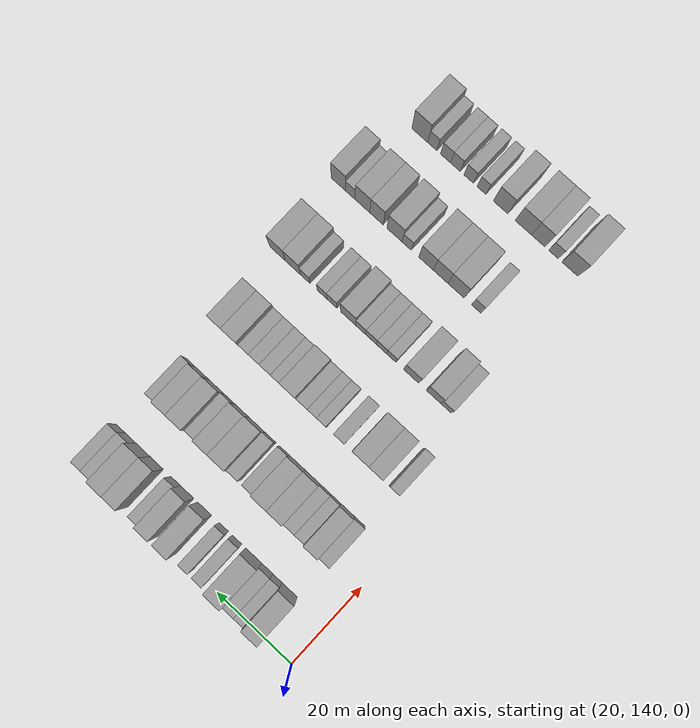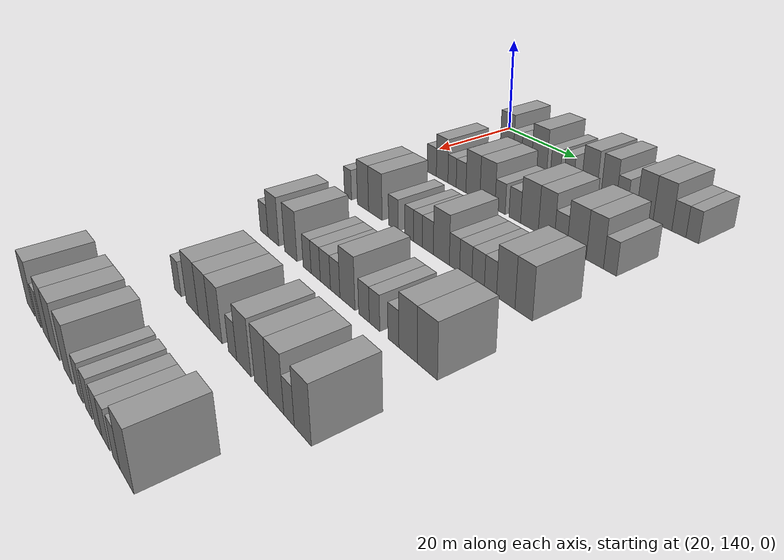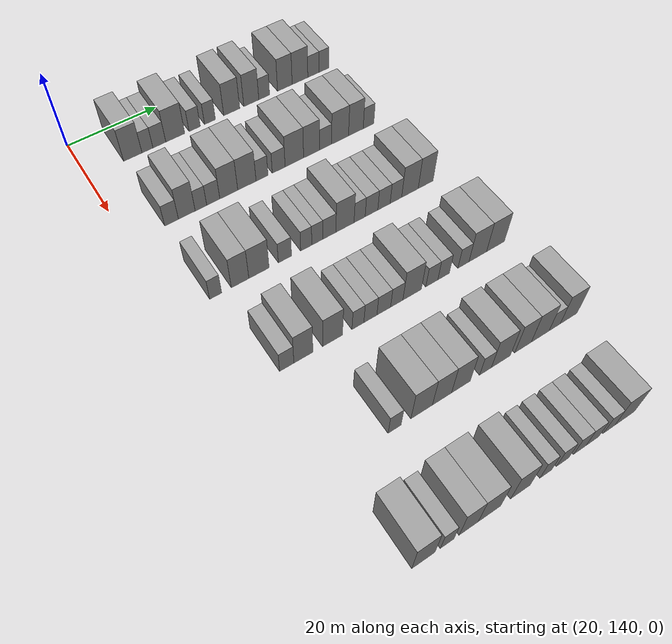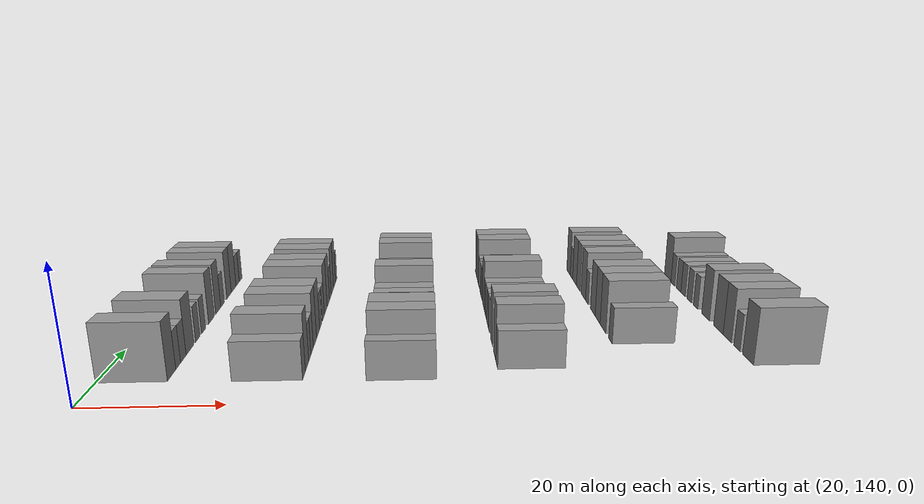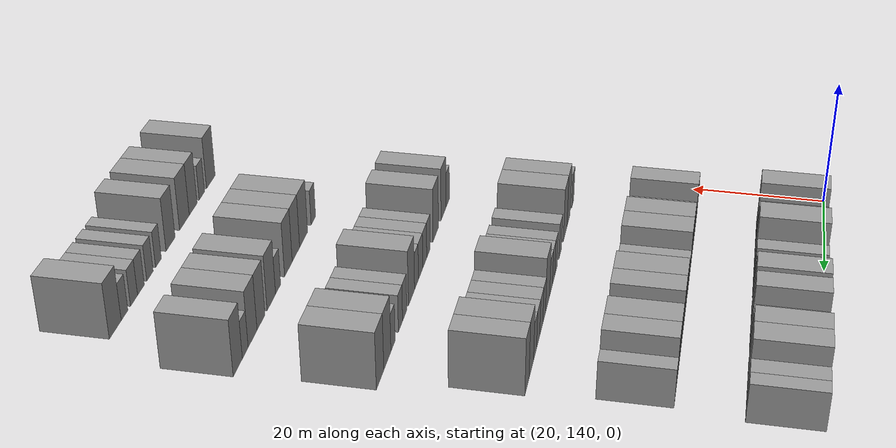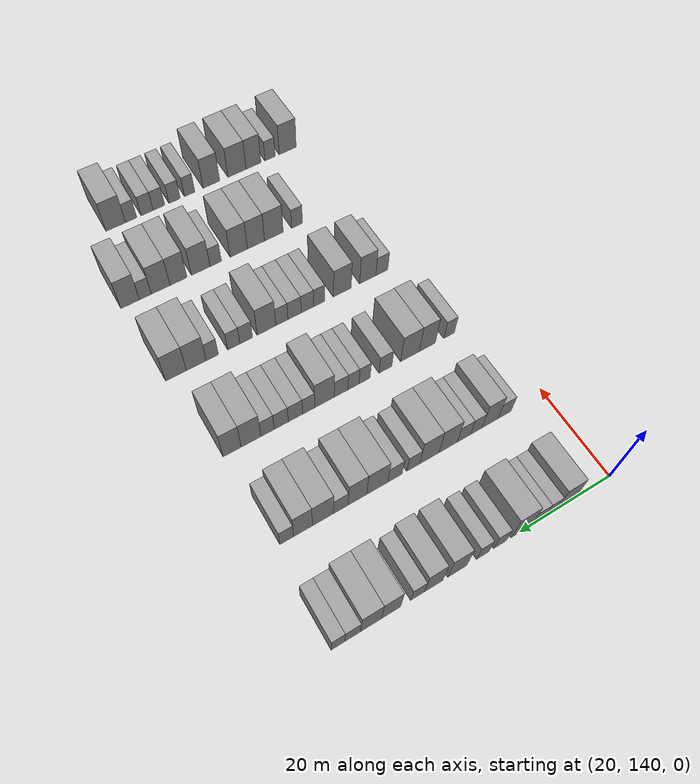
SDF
<sdf version="1.6">
 <world name="default">
  <model name="building_128">
   <static>1</static>
   <pose>25.0000 149.9332 0 0.000000 0.000000 0.000000</pose>
   <link name="link">
    <pose>0 0 4.50 0 0 0</pose>
    <collision name="collision"><geometry><box><size>10.0000 4.0951 9.0000</size></box></geometry></collision>
    <visual name="visual">
     <cast_shadows>0</cast_shadows>
     <geometry><box><size>10.0000 4.0951 9.0000</size></box></geometry>
     <material>
      <script>
       <uri>model://grey_wall/materials/scripts</uri>
       <uri>model://grey_wall/materials/textures</uri>
       <name>vrc/grey_wall</name>
      </script>
     </material>
    </visual>
   </link>
  </model>
  <model name="building_129">
   <static>1</static>
   <pose>25.0000 153.2146 0 0.000000 0.000000 0.000000</pose>
   <link name="link">
    <pose>0 0 3.00 0 0 0</pose>
    <collision name="collision"><geometry><box><size>10.0000 2.4677 6.0000</size></box></geometry></collision>
    <visual name="visual">
     <cast_shadows>0</cast_shadows>
     <geometry><box><size>10.0000 2.4677 6.0000</size></box></geometry>
     <material>
      <script>
       <uri>model://grey_wall/materials/scripts</uri>
       <uri>model://grey_wall/materials/textures</uri>
       <name>vrc/grey_wall</name>
      </script>
     </material>
    </visual>
   </link>
  </model>
  <model name="building_130">
   <static>1</static>
   <pose>25.0000 155.9123 0 0.000000 0.000000 0.000000</pose>
   <link name="link">
    <pose>0 0 3.00 0 0 0</pose>
    <collision name="collision"><geometry><box><size>10.0000 2.9278 6.0000</size></box></geometry></collision>
    <visual name="visual">
     <cast_shadows>0</cast_shadows>
     <geometry><box><size>10.0000 2.9278 6.0000</size></box></geometry>
     <material>
      <script>
       <uri>model://grey_wall/materials/scripts</uri>
       <uri>model://grey_wall/materials/textures</uri>
       <name>vrc/grey_wall</name>
      </script>
     </material>
    </visual>
   </link>
  </model>
  <model name="building_131">
   <static>1</static>
   <pose>25.0000 159.5627 0 0.000000 0.000000 0.000000</pose>
   <link name="link">
    <pose>0 0 4.50 0 0 0</pose>
    <collision name="collision"><geometry><box><size>10.0000 4.3728 9.0000</size></box></geometry></collision>
    <visual name="visual">
     <cast_shadows>0</cast_shadows>
     <geometry><box><size>10.0000 4.3728 9.0000</size></box></geometry>
     <material>
      <script>
       <uri>model://grey_wall/materials/scripts</uri>
       <uri>model://grey_wall/materials/textures</uri>
       <name>vrc/grey_wall</name>
      </script>
     </material>
    </visual>
   </link>
  </model>
  <model name="building_132">
   <static>1</static>
   <pose>25.0000 164.0671 0 0.000000 0.000000 0.000000</pose>
   <link name="link">
    <pose>0 0 3.00 0 0 0</pose>
    <collision name="collision"><geometry><box><size>10.0000 2.6360 6.0000</size></box></geometry></collision>
    <visual name="visual">
     <cast_shadows>0</cast_shadows>
     <geometry><box><size>10.0000 2.6360 6.0000</size></box></geometry>
     <material>
      <script>
       <uri>model://grey_wall/materials/scripts</uri>
       <uri>model://grey_wall/materials/textures</uri>
       <name>vrc/grey_wall</name>
      </script>
     </material>
    </visual>
   </link>
  </model>
  <model name="building_133">
   <static>1</static>
   <pose>25.0000 167.6781 0 0.000000 0.000000 0.000000</pose>
   <link name="link">
    <pose>0 0 3.00 0 0 0</pose>
    <collision name="collision"><geometry><box><size>10.0000 2.5861 6.0000</size></box></geometry></collision>
    <visual name="visual">
     <cast_shadows>0</cast_shadows>
     <geometry><box><size>10.0000 2.5861 6.0000</size></box></geometry>
     <material>
      <script>
       <uri>model://grey_wall/materials/scripts</uri>
       <uri>model://grey_wall/materials/textures</uri>
       <name>vrc/grey_wall</name>
      </script>
     </material>
    </visual>
   </link>
  </model>
  <model name="building_134">
   <static>1</static>
   <pose>25.0000 172.9062 0 0.000000 0.000000 0.000000</pose>
   <link name="link">
    <pose>0 0 4.50 0 0 0</pose>
    <collision name="collision"><geometry><box><size>10.0000 3.8702 9.0000</size></box></geometry></collision>
    <visual name="visual">
     <cast_shadows>0</cast_shadows>
     <geometry><box><size>10.0000 3.8702 9.0000</size></box></geometry>
     <material>
      <script>
       <uri>model://grey_wall/materials/scripts</uri>
       <uri>model://grey_wall/materials/textures</uri>
       <name>vrc/grey_wall</name>
      </script>
     </material>
    </visual>
   </link>
  </model>
  <model name="building_135">
   <static>1</static>
   <pose>25.0000 177.6879 0 0.000000 0.000000 0.000000</pose>
   <link name="link">
    <pose>0 0 4.50 0 0 0</pose>
    <collision name="collision"><geometry><box><size>10.0000 3.6933 9.0000</size></box></geometry></collision>
    <visual name="visual">
     <cast_shadows>0</cast_shadows>
     <geometry><box><size>10.0000 3.6933 9.0000</size></box></geometry>
     <material>
      <script>
       <uri>model://grey_wall/materials/scripts</uri>
       <uri>model://grey_wall/materials/textures</uri>
       <name>vrc/grey_wall</name>
      </script>
     </material>
    </visual>
   </link>
  </model>
  <model name="building_136">
   <static>1</static>
   <pose>25.0000 180.8743 0 0.000000 0.000000 0.000000</pose>
   <link name="link">
    <pose>0 0 3.00 0 0 0</pose>
    <collision name="collision"><geometry><box><size>10.0000 2.6794 6.0000</size></box></geometry></collision>
    <visual name="visual">
     <cast_shadows>0</cast_shadows>
     <geometry><box><size>10.0000 2.6794 6.0000</size></box></geometry>
     <material>
      <script>
       <uri>model://grey_wall/materials/scripts</uri>
       <uri>model://grey_wall/materials/textures</uri>
       <name>vrc/grey_wall</name>
      </script>
     </material>
    </visual>
   </link>
  </model>
  <model name="building_137">
   <static>1</static>
   <pose>25.0000 186.0602 0 0.000000 0.000000 0.000000</pose>
   <link name="link">
    <pose>0 0 4.50 0 0 0</pose>
    <collision name="collision"><geometry><box><size>10.0000 3.6924 9.0000</size></box></geometry></collision>
    <visual name="visual">
     <cast_shadows>0</cast_shadows>
     <geometry><box><size>10.0000 3.6924 9.0000</size></box></geometry>
     <material>
      <script>
       <uri>model://grey_wall/materials/scripts</uri>
       <uri>model://grey_wall/materials/textures</uri>
       <name>vrc/grey_wall</name>
      </script>
     </material>
    </visual>
   </link>
  </model>
  <model name="building_138">
   <static>1</static>
   <pose>25.0000 189.9158 0 0.000000 0.000000 0.000000</pose>
   <link name="link">
    <pose>0 0 4.50 0 0 0</pose>
    <collision name="collision"><geometry><box><size>10.0000 4.0190 9.0000</size></box></geometry></collision>
    <visual name="visual">
     <cast_shadows>0</cast_shadows>
     <geometry><box><size>10.0000 4.0190 9.0000</size></box></geometry>
     <material>
      <script>
       <uri>model://grey_wall/materials/scripts</uri>
       <uri>model://grey_wall/materials/textures</uri>
       <name>vrc/grey_wall</name>
      </script>
     </material>
    </visual>
   </link>
  </model>
  <model name="building_139">
   <static>1</static>
   <pose>25.0000 193.3886 0 0.000000 0.000000 0.000000</pose>
   <link name="link">
    <pose>0 0 3.00 0 0 0</pose>
    <collision name="collision"><geometry><box><size>10.0000 2.9265 6.0000</size></box></geometry></collision>
    <visual name="visual">
     <cast_shadows>0</cast_shadows>
     <geometry><box><size>10.0000 2.9265 6.0000</size></box></geometry>
     <material>
      <script>
       <uri>model://grey_wall/materials/scripts</uri>
       <uri>model://grey_wall/materials/textures</uri>
       <name>vrc/grey_wall</name>
      </script>
     </material>
    </visual>
   </link>
  </model>
  <model name="building_140">
   <static>1</static>
   <pose>25.0000 196.1242 0 0.000000 0.000000 0.000000</pose>
   <link name="link">
    <pose>0 0 3.00 0 0 0</pose>
    <collision name="collision"><geometry><box><size>10.0000 2.5448 6.0000</size></box></geometry></collision>
    <visual name="visual">
     <cast_shadows>0</cast_shadows>
     <geometry><box><size>10.0000 2.5448 6.0000</size></box></geometry>
     <material>
      <script>
       <uri>model://grey_wall/materials/scripts</uri>
       <uri>model://grey_wall/materials/textures</uri>
       <name>vrc/grey_wall</name>
      </script>
     </material>
    </visual>
   </link>
  </model>
  <model name="building_299">
   <static>1</static>
   <pose>44.0000 148.9852 0 0.000000 0.000000 0.000000</pose>
   <link name="link">
    <pose>0 0 3.00 0 0 0</pose>
    <collision name="collision"><geometry><box><size>10.0000 2.9415 6.0000</size></box></geometry></collision>
    <visual name="visual">
     <cast_shadows>0</cast_shadows>
     <geometry><box><size>10.0000 2.9415 6.0000</size></box></geometry>
     <material>
      <script>
       <uri>model://grey_wall/materials/scripts</uri>
       <uri>model://grey_wall/materials/textures</uri>
       <name>vrc/grey_wall</name>
      </script>
     </material>
    </visual>
   </link>
  </model>
  <model name="building_300">
   <static>1</static>
   <pose>44.0000 152.2746 0 0.000000 0.000000 0.000000</pose>
   <link name="link">
    <pose>0 0 4.50 0 0 0</pose>
    <collision name="collision"><geometry><box><size>10.0000 3.6374 9.0000</size></box></geometry></collision>
    <visual name="visual">
     <cast_shadows>0</cast_shadows>
     <geometry><box><size>10.0000 3.6374 9.0000</size></box></geometry>
     <material>
      <script>
       <uri>model://grey_wall/materials/scripts</uri>
       <uri>model://grey_wall/materials/textures</uri>
       <name>vrc/grey_wall</name>
      </script>
     </material>
    </visual>
   </link>
  </model>
  <model name="building_301">
   <static>1</static>
   <pose>44.0000 155.3535 0 0.000000 0.000000 0.000000</pose>
   <link name="link">
    <pose>0 0 3.00 0 0 0</pose>
    <collision name="collision"><geometry><box><size>10.0000 2.5203 6.0000</size></box></geometry></collision>
    <visual name="visual">
     <cast_shadows>0</cast_shadows>
     <geometry><box><size>10.0000 2.5203 6.0000</size></box></geometry>
     <material>
      <script>
       <uri>model://grey_wall/materials/scripts</uri>
       <uri>model://grey_wall/materials/textures</uri>
       <name>vrc/grey_wall</name>
      </script>
     </material>
    </visual>
   </link>
  </model>
  <model name="building_302">
   <static>1</static>
   <pose>44.0000 158.0632 0 0.000000 0.000000 0.000000</pose>
   <link name="link">
    <pose>0 0 3.00 0 0 0</pose>
    <collision name="collision"><geometry><box><size>10.0000 2.8992 6.0000</size></box></geometry></collision>
    <visual name="visual">
     <cast_shadows>0</cast_shadows>
     <geometry><box><size>10.0000 2.8992 6.0000</size></box></geometry>
     <material>
      <script>
       <uri>model://grey_wall/materials/scripts</uri>
       <uri>model://grey_wall/materials/textures</uri>
       <name>vrc/grey_wall</name>
      </script>
     </material>
    </visual>
   </link>
  </model>
  <model name="building_303">
   <static>1</static>
   <pose>44.0000 161.5219 0 0.000000 0.000000 0.000000</pose>
   <link name="link">
    <pose>0 0 4.50 0 0 0</pose>
    <collision name="collision"><geometry><box><size>10.0000 4.0182 9.0000</size></box></geometry></collision>
    <visual name="visual">
     <cast_shadows>0</cast_shadows>
     <geometry><box><size>10.0000 4.0182 9.0000</size></box></geometry>
     <material>
      <script>
       <uri>model://grey_wall/materials/scripts</uri>
       <uri>model://grey_wall/materials/textures</uri>
       <name>vrc/grey_wall</name>
      </script>
     </material>
    </visual>
   </link>
  </model>
  <model name="building_304">
   <static>1</static>
   <pose>44.0000 165.6217 0 0.000000 0.000000 0.000000</pose>
   <link name="link">
    <pose>0 0 4.50 0 0 0</pose>
    <collision name="collision"><geometry><box><size>10.0000 4.1815 9.0000</size></box></geometry></collision>
    <visual name="visual">
     <cast_shadows>0</cast_shadows>
     <geometry><box><size>10.0000 4.1815 9.0000</size></box></geometry>
     <material>
      <script>
       <uri>model://grey_wall/materials/scripts</uri>
       <uri>model://grey_wall/materials/textures</uri>
       <name>vrc/grey_wall</name>
      </script>
     </material>
    </visual>
   </link>
  </model>
  <model name="building_305">
   <static>1</static>
   <pose>44.0000 169.0874 0 0.000000 0.000000 0.000000</pose>
   <link name="link">
    <pose>0 0 3.00 0 0 0</pose>
    <collision name="collision"><geometry><box><size>10.0000 2.7500 6.0000</size></box></geometry></collision>
    <visual name="visual">
     <cast_shadows>0</cast_shadows>
     <geometry><box><size>10.0000 2.7500 6.0000</size></box></geometry>
     <material>
      <script>
       <uri>model://grey_wall/materials/scripts</uri>
       <uri>model://grey_wall/materials/textures</uri>
       <name>vrc/grey_wall</name>
      </script>
     </material>
    </visual>
   </link>
  </model>
  <model name="building_306">
   <static>1</static>
   <pose>44.0000 172.9599 0 0.000000 0.000000 0.000000</pose>
   <link name="link">
    <pose>0 0 3.00 0 0 0</pose>
    <collision name="collision"><geometry><box><size>10.0000 2.9949 6.0000</size></box></geometry></collision>
    <visual name="visual">
     <cast_shadows>0</cast_shadows>
     <geometry><box><size>10.0000 2.9949 6.0000</size></box></geometry>
     <material>
      <script>
       <uri>model://grey_wall/materials/scripts</uri>
       <uri>model://grey_wall/materials/textures</uri>
       <name>vrc/grey_wall</name>
      </script>
     </material>
    </visual>
   </link>
  </model>
  <model name="building_307">
   <static>1</static>
   <pose>44.0000 176.6464 0 0.000000 0.000000 0.000000</pose>
   <link name="link">
    <pose>0 0 4.50 0 0 0</pose>
    <collision name="collision"><geometry><box><size>10.0000 4.3780 9.0000</size></box></geometry></collision>
    <visual name="visual">
     <cast_shadows>0</cast_shadows>
     <geometry><box><size>10.0000 4.3780 9.0000</size></box></geometry>
     <material>
      <script>
       <uri>model://grey_wall/materials/scripts</uri>
       <uri>model://grey_wall/materials/textures</uri>
       <name>vrc/grey_wall</name>
      </script>
     </material>
    </visual>
   </link>
  </model>
  <model name="building_308">
   <static>1</static>
   <pose>44.0000 180.7453 0 0.000000 0.000000 0.000000</pose>
   <link name="link">
    <pose>0 0 4.50 0 0 0</pose>
    <collision name="collision"><geometry><box><size>10.0000 3.8199 9.0000</size></box></geometry></collision>
    <visual name="visual">
     <cast_shadows>0</cast_shadows>
     <geometry><box><size>10.0000 3.8199 9.0000</size></box></geometry>
     <material>
      <script>
       <uri>model://grey_wall/materials/scripts</uri>
       <uri>model://grey_wall/materials/textures</uri>
       <name>vrc/grey_wall</name>
      </script>
     </material>
    </visual>
   </link>
  </model>
  <model name="building_309">
   <static>1</static>
   <pose>44.0000 184.1273 0 0.000000 0.000000 0.000000</pose>
   <link name="link">
    <pose>0 0 3.00 0 0 0</pose>
    <collision name="collision"><geometry><box><size>10.0000 2.9441 6.0000</size></box></geometry></collision>
    <visual name="visual">
     <cast_shadows>0</cast_shadows>
     <geometry><box><size>10.0000 2.9441 6.0000</size></box></geometry>
     <material>
      <script>
       <uri>model://grey_wall/materials/scripts</uri>
       <uri>model://grey_wall/materials/textures</uri>
       <name>vrc/grey_wall</name>
      </script>
     </material>
    </visual>
   </link>
  </model>
  <model name="building_310">
   <static>1</static>
   <pose>44.0000 187.7050 0 0.000000 0.000000 0.000000</pose>
   <link name="link">
    <pose>0 0 4.50 0 0 0</pose>
    <collision name="collision"><geometry><box><size>10.0000 4.2112 9.0000</size></box></geometry></collision>
    <visual name="visual">
     <cast_shadows>0</cast_shadows>
     <geometry><box><size>10.0000 4.2112 9.0000</size></box></geometry>
     <material>
      <script>
       <uri>model://grey_wall/materials/scripts</uri>
       <uri>model://grey_wall/materials/textures</uri>
       <name>vrc/grey_wall</name>
      </script>
     </material>
    </visual>
   </link>
  </model>
  <model name="building_311">
   <static>1</static>
   <pose>44.0000 191.6501 0 0.000000 0.000000 0.000000</pose>
   <link name="link">
    <pose>0 0 4.50 0 0 0</pose>
    <collision name="collision"><geometry><box><size>10.0000 3.6789 9.0000</size></box></geometry></collision>
    <visual name="visual">
     <cast_shadows>0</cast_shadows>
     <geometry><box><size>10.0000 3.6789 9.0000</size></box></geometry>
     <material>
      <script>
       <uri>model://grey_wall/materials/scripts</uri>
       <uri>model://grey_wall/materials/textures</uri>
       <name>vrc/grey_wall</name>
      </script>
     </material>
    </visual>
   </link>
  </model>
  <model name="building_312">
   <static>1</static>
   <pose>44.0000 194.8314 0 0.000000 0.000000 0.000000</pose>
   <link name="link">
    <pose>0 0 3.00 0 0 0</pose>
    <collision name="collision"><geometry><box><size>10.0000 2.6838 6.0000</size></box></geometry></collision>
    <visual name="visual">
     <cast_shadows>0</cast_shadows>
     <geometry><box><size>10.0000 2.6838 6.0000</size></box></geometry>
     <material>
      <script>
       <uri>model://grey_wall/materials/scripts</uri>
       <uri>model://grey_wall/materials/textures</uri>
       <name>vrc/grey_wall</name>
      </script>
     </material>
    </visual>
   </link>
  </model>
  <model name="building_473">
   <static>1</static>
   <pose>63.0000 148.1339 0 0.000000 0.000000 0.000000</pose>
   <link name="link">
    <pose>0 0 3.00 0 0 0</pose>
    <collision name="collision"><geometry><box><size>10.0000 2.4583 6.0000</size></box></geometry></collision>
    <visual name="visual">
     <cast_shadows>0</cast_shadows>
     <geometry><box><size>10.0000 2.4583 6.0000</size></box></geometry>
     <material>
      <script>
       <uri>model://grey_wall/materials/scripts</uri>
       <uri>model://grey_wall/materials/textures</uri>
       <name>vrc/grey_wall</name>
      </script>
     </material>
    </visual>
   </link>
  </model>
  <model name="building_474">
   <static>1</static>
   <pose>63.0000 153.1992 0 0.000000 0.000000 0.000000</pose>
   <link name="link">
    <pose>0 0 4.50 0 0 0</pose>
    <collision name="collision"><geometry><box><size>10.0000 3.6725 9.0000</size></box></geometry></collision>
    <visual name="visual">
     <cast_shadows>0</cast_shadows>
     <geometry><box><size>10.0000 3.6725 9.0000</size></box></geometry>
     <material>
      <script>
       <uri>model://grey_wall/materials/scripts</uri>
       <uri>model://grey_wall/materials/textures</uri>
       <name>vrc/grey_wall</name>
      </script>
     </material>
    </visual>
   </link>
  </model>
  <model name="building_475">
   <static>1</static>
   <pose>63.0000 157.1830 0 0.000000 0.000000 0.000000</pose>
   <link name="link">
    <pose>0 0 4.50 0 0 0</pose>
    <collision name="collision"><geometry><box><size>10.0000 4.2952 9.0000</size></box></geometry></collision>
    <visual name="visual">
     <cast_shadows>0</cast_shadows>
     <geometry><box><size>10.0000 4.2952 9.0000</size></box></geometry>
     <material>
      <script>
       <uri>model://grey_wall/materials/scripts</uri>
       <uri>model://grey_wall/materials/textures</uri>
       <name>vrc/grey_wall</name>
      </script>
     </material>
    </visual>
   </link>
  </model>
  <model name="building_476">
   <static>1</static>
   <pose>63.0000 162.7637 0 0.000000 0.000000 0.000000</pose>
   <link name="link">
    <pose>0 0 3.00 0 0 0</pose>
    <collision name="collision"><geometry><box><size>10.0000 2.8661 6.0000</size></box></geometry></collision>
    <visual name="visual">
     <cast_shadows>0</cast_shadows>
     <geometry><box><size>10.0000 2.8661 6.0000</size></box></geometry>
     <material>
      <script>
       <uri>model://grey_wall/materials/scripts</uri>
       <uri>model://grey_wall/materials/textures</uri>
       <name>vrc/grey_wall</name>
      </script>
     </material>
    </visual>
   </link>
  </model>
  <model name="building_477">
   <static>1</static>
   <pose>63.0000 167.4214 0 0.000000 0.000000 0.000000</pose>
   <link name="link">
    <pose>0 0 3.00 0 0 0</pose>
    <collision name="collision"><geometry><box><size>10.0000 2.4494 6.0000</size></box></geometry></collision>
    <visual name="visual">
     <cast_shadows>0</cast_shadows>
     <geometry><box><size>10.0000 2.4494 6.0000</size></box></geometry>
     <material>
      <script>
       <uri>model://grey_wall/materials/scripts</uri>
       <uri>model://grey_wall/materials/textures</uri>
       <name>vrc/grey_wall</name>
      </script>
     </material>
    </visual>
   </link>
  </model>
  <model name="building_478">
   <static>1</static>
   <pose>63.0000 169.8638 0 0.000000 0.000000 0.000000</pose>
   <link name="link">
    <pose>0 0 3.00 0 0 0</pose>
    <collision name="collision"><geometry><box><size>10.0000 2.4354 6.0000</size></box></geometry></collision>
    <visual name="visual">
     <cast_shadows>0</cast_shadows>
     <geometry><box><size>10.0000 2.4354 6.0000</size></box></geometry>
     <material>
      <script>
       <uri>model://grey_wall/materials/scripts</uri>
       <uri>model://grey_wall/materials/textures</uri>
       <name>vrc/grey_wall</name>
      </script>
     </material>
    </visual>
   </link>
  </model>
  <model name="building_479">
   <static>1</static>
   <pose>63.0000 172.5766 0 0.000000 0.000000 0.000000</pose>
   <link name="link">
    <pose>0 0 3.00 0 0 0</pose>
    <collision name="collision"><geometry><box><size>10.0000 2.9901 6.0000</size></box></geometry></collision>
    <visual name="visual">
     <cast_shadows>0</cast_shadows>
     <geometry><box><size>10.0000 2.9901 6.0000</size></box></geometry>
     <material>
      <script>
       <uri>model://grey_wall/materials/scripts</uri>
       <uri>model://grey_wall/materials/textures</uri>
       <name>vrc/grey_wall</name>
      </script>
     </material>
    </visual>
   </link>
  </model>
  <model name="building_480">
   <static>1</static>
   <pose>63.0000 176.1575 0 0.000000 0.000000 0.000000</pose>
   <link name="link">
    <pose>0 0 4.50 0 0 0</pose>
    <collision name="collision"><geometry><box><size>10.0000 4.1718 9.0000</size></box></geometry></collision>
    <visual name="visual">
     <cast_shadows>0</cast_shadows>
     <geometry><box><size>10.0000 4.1718 9.0000</size></box></geometry>
     <material>
      <script>
       <uri>model://grey_wall/materials/scripts</uri>
       <uri>model://grey_wall/materials/textures</uri>
       <name>vrc/grey_wall</name>
      </script>
     </material>
    </visual>
   </link>
  </model>
  <model name="building_481">
   <static>1</static>
   <pose>63.0000 179.5394 0 0.000000 0.000000 0.000000</pose>
   <link name="link">
    <pose>0 0 3.00 0 0 0</pose>
    <collision name="collision"><geometry><box><size>10.0000 2.5919 6.0000</size></box></geometry></collision>
    <visual name="visual">
     <cast_shadows>0</cast_shadows>
     <geometry><box><size>10.0000 2.5919 6.0000</size></box></geometry>
     <material>
      <script>
       <uri>model://grey_wall/materials/scripts</uri>
       <uri>model://grey_wall/materials/textures</uri>
       <name>vrc/grey_wall</name>
      </script>
     </material>
    </visual>
   </link>
  </model>
  <model name="building_482">
   <static>1</static>
   <pose>63.0000 182.3207 0 0.000000 0.000000 0.000000</pose>
   <link name="link">
    <pose>0 0 3.00 0 0 0</pose>
    <collision name="collision"><geometry><box><size>10.0000 2.9708 6.0000</size></box></geometry></collision>
    <visual name="visual">
     <cast_shadows>0</cast_shadows>
     <geometry><box><size>10.0000 2.9708 6.0000</size></box></geometry>
     <material>
      <script>
       <uri>model://grey_wall/materials/scripts</uri>
       <uri>model://grey_wall/materials/textures</uri>
       <name>vrc/grey_wall</name>
      </script>
     </material>
    </visual>
   </link>
  </model>
  <model name="building_483">
   <static>1</static>
   <pose>63.0000 185.2735 0 0.000000 0.000000 0.000000</pose>
   <link name="link">
    <pose>0 0 3.00 0 0 0</pose>
    <collision name="collision"><geometry><box><size>10.0000 2.9347 6.0000</size></box></geometry></collision>
    <visual name="visual">
     <cast_shadows>0</cast_shadows>
     <geometry><box><size>10.0000 2.9347 6.0000</size></box></geometry>
     <material>
      <script>
       <uri>model://grey_wall/materials/scripts</uri>
       <uri>model://grey_wall/materials/textures</uri>
       <name>vrc/grey_wall</name>
      </script>
     </material>
    </visual>
   </link>
  </model>
  <model name="building_484">
   <static>1</static>
   <pose>63.0000 188.1215 0 0.000000 0.000000 0.000000</pose>
   <link name="link">
    <pose>0 0 3.00 0 0 0</pose>
    <collision name="collision"><geometry><box><size>10.0000 2.7613 6.0000</size></box></geometry></collision>
    <visual name="visual">
     <cast_shadows>0</cast_shadows>
     <geometry><box><size>10.0000 2.7613 6.0000</size></box></geometry>
     <material>
      <script>
       <uri>model://grey_wall/materials/scripts</uri>
       <uri>model://grey_wall/materials/textures</uri>
       <name>vrc/grey_wall</name>
      </script>
     </material>
    </visual>
   </link>
  </model>
  <model name="building_485">
   <static>1</static>
   <pose>63.0000 191.5206 0 0.000000 0.000000 0.000000</pose>
   <link name="link">
    <pose>0 0 4.50 0 0 0</pose>
    <collision name="collision"><geometry><box><size>10.0000 4.0368 9.0000</size></box></geometry></collision>
    <visual name="visual">
     <cast_shadows>0</cast_shadows>
     <geometry><box><size>10.0000 4.0368 9.0000</size></box></geometry>
     <material>
      <script>
       <uri>model://grey_wall/materials/scripts</uri>
       <uri>model://grey_wall/materials/textures</uri>
       <name>vrc/grey_wall</name>
      </script>
     </material>
    </visual>
   </link>
  </model>
  <model name="building_486">
   <static>1</static>
   <pose>63.0000 195.3687 0 0.000000 0.000000 0.000000</pose>
   <link name="link">
    <pose>0 0 4.50 0 0 0</pose>
    <collision name="collision"><geometry><box><size>10.0000 3.6594 9.0000</size></box></geometry></collision>
    <visual name="visual">
     <cast_shadows>0</cast_shadows>
     <geometry><box><size>10.0000 3.6594 9.0000</size></box></geometry>
     <material>
      <script>
       <uri>model://grey_wall/materials/scripts</uri>
       <uri>model://grey_wall/materials/textures</uri>
       <name>vrc/grey_wall</name>
      </script>
     </material>
    </visual>
   </link>
  </model>
  <model name="building_648">
   <static>1</static>
   <pose>82.0000 151.4515 0 0.000000 0.000000 0.000000</pose>
   <link name="link">
    <pose>0 0 3.00 0 0 0</pose>
    <collision name="collision"><geometry><box><size>10.0000 2.8525 6.0000</size></box></geometry></collision>
    <visual name="visual">
     <cast_shadows>0</cast_shadows>
     <geometry><box><size>10.0000 2.8525 6.0000</size></box></geometry>
     <material>
      <script>
       <uri>model://grey_wall/materials/scripts</uri>
       <uri>model://grey_wall/materials/textures</uri>
       <name>vrc/grey_wall</name>
      </script>
     </material>
    </visual>
   </link>
  </model>
  <model name="building_649">
   <static>1</static>
   <pose>82.0000 154.7973 0 0.000000 0.000000 0.000000</pose>
   <link name="link">
    <pose>0 0 4.50 0 0 0</pose>
    <collision name="collision"><geometry><box><size>10.0000 3.8392 9.0000</size></box></geometry></collision>
    <visual name="visual">
     <cast_shadows>0</cast_shadows>
     <geometry><box><size>10.0000 3.8392 9.0000</size></box></geometry>
     <material>
      <script>
       <uri>model://grey_wall/materials/scripts</uri>
       <uri>model://grey_wall/materials/textures</uri>
       <name>vrc/grey_wall</name>
      </script>
     </material>
    </visual>
   </link>
  </model>
  <model name="building_650">
   <static>1</static>
   <pose>82.0000 160.7923 0 0.000000 0.000000 0.000000</pose>
   <link name="link">
    <pose>0 0 4.50 0 0 0</pose>
    <collision name="collision"><geometry><box><size>10.0000 4.1509 9.0000</size></box></geometry></collision>
    <visual name="visual">
     <cast_shadows>0</cast_shadows>
     <geometry><box><size>10.0000 4.1509 9.0000</size></box></geometry>
     <material>
      <script>
       <uri>model://grey_wall/materials/scripts</uri>
       <uri>model://grey_wall/materials/textures</uri>
       <name>vrc/grey_wall</name>
      </script>
     </material>
    </visual>
   </link>
  </model>
  <model name="building_651">
   <static>1</static>
   <pose>82.0000 166.1314 0 0.000000 0.000000 0.000000</pose>
   <link name="link">
    <pose>0 0 3.00 0 0 0</pose>
    <collision name="collision"><geometry><box><size>10.0000 2.5272 6.0000</size></box></geometry></collision>
    <visual name="visual">
     <cast_shadows>0</cast_shadows>
     <geometry><box><size>10.0000 2.5272 6.0000</size></box></geometry>
     <material>
      <script>
       <uri>model://grey_wall/materials/scripts</uri>
       <uri>model://grey_wall/materials/textures</uri>
       <name>vrc/grey_wall</name>
      </script>
     </material>
    </visual>
   </link>
  </model>
  <model name="building_652">
   <static>1</static>
   <pose>82.0000 168.7957 0 0.000000 0.000000 0.000000</pose>
   <link name="link">
    <pose>0 0 3.00 0 0 0</pose>
    <collision name="collision"><geometry><box><size>10.0000 2.8014 6.0000</size></box></geometry></collision>
    <visual name="visual">
     <cast_shadows>0</cast_shadows>
     <geometry><box><size>10.0000 2.8014 6.0000</size></box></geometry>
     <material>
      <script>
       <uri>model://grey_wall/materials/scripts</uri>
       <uri>model://grey_wall/materials/textures</uri>
       <name>vrc/grey_wall</name>
      </script>
     </material>
    </visual>
   </link>
  </model>
  <model name="building_653">
   <static>1</static>
   <pose>82.0000 171.6938 0 0.000000 0.000000 0.000000</pose>
   <link name="link">
    <pose>0 0 3.00 0 0 0</pose>
    <collision name="collision"><geometry><box><size>10.0000 2.9949 6.0000</size></box></geometry></collision>
    <visual name="visual">
     <cast_shadows>0</cast_shadows>
     <geometry><box><size>10.0000 2.9949 6.0000</size></box></geometry>
     <material>
      <script>
       <uri>model://grey_wall/materials/scripts</uri>
       <uri>model://grey_wall/materials/textures</uri>
       <name>vrc/grey_wall</name>
      </script>
     </material>
    </visual>
   </link>
  </model>
  <model name="building_654">
   <static>1</static>
   <pose>82.0000 174.5457 0 0.000000 0.000000 0.000000</pose>
   <link name="link">
    <pose>0 0 3.00 0 0 0</pose>
    <collision name="collision"><geometry><box><size>10.0000 2.7090 6.0000</size></box></geometry></collision>
    <visual name="visual">
     <cast_shadows>0</cast_shadows>
     <geometry><box><size>10.0000 2.7090 6.0000</size></box></geometry>
     <material>
      <script>
       <uri>model://grey_wall/materials/scripts</uri>
       <uri>model://grey_wall/materials/textures</uri>
       <name>vrc/grey_wall</name>
      </script>
     </material>
    </visual>
   </link>
  </model>
  <model name="building_655">
   <static>1</static>
   <pose>82.0000 177.9695 0 0.000000 0.000000 0.000000</pose>
   <link name="link">
    <pose>0 0 4.50 0 0 0</pose>
    <collision name="collision"><geometry><box><size>10.0000 4.1385 9.0000</size></box></geometry></collision>
    <visual name="visual">
     <cast_shadows>0</cast_shadows>
     <geometry><box><size>10.0000 4.1385 9.0000</size></box></geometry>
     <material>
      <script>
       <uri>model://grey_wall/materials/scripts</uri>
       <uri>model://grey_wall/materials/textures</uri>
       <name>vrc/grey_wall</name>
      </script>
     </material>
    </visual>
   </link>
  </model>
  <model name="building_656">
   <static>1</static>
   <pose>82.0000 182.4189 0 0.000000 0.000000 0.000000</pose>
   <link name="link">
    <pose>0 0 3.00 0 0 0</pose>
    <collision name="collision"><geometry><box><size>10.0000 2.7604 6.0000</size></box></geometry></collision>
    <visual name="visual">
     <cast_shadows>0</cast_shadows>
     <geometry><box><size>10.0000 2.7604 6.0000</size></box></geometry>
     <material>
      <script>
       <uri>model://grey_wall/materials/scripts</uri>
       <uri>model://grey_wall/materials/textures</uri>
       <name>vrc/grey_wall</name>
      </script>
     </material>
    </visual>
   </link>
  </model>
  <model name="building_657">
   <static>1</static>
   <pose>82.0000 185.1187 0 0.000000 0.000000 0.000000</pose>
   <link name="link">
    <pose>0 0 3.00 0 0 0</pose>
    <collision name="collision"><geometry><box><size>10.0000 2.6391 6.0000</size></box></geometry></collision>
    <visual name="visual">
     <cast_shadows>0</cast_shadows>
     <geometry><box><size>10.0000 2.6391 6.0000</size></box></geometry>
     <material>
      <script>
       <uri>model://grey_wall/materials/scripts</uri>
       <uri>model://grey_wall/materials/textures</uri>
       <name>vrc/grey_wall</name>
      </script>
     </material>
    </visual>
   </link>
  </model>
  <model name="building_658">
   <static>1</static>
   <pose>82.0000 189.7355 0 0.000000 0.000000 0.000000</pose>
   <link name="link">
    <pose>0 0 3.00 0 0 0</pose>
    <collision name="collision"><geometry><box><size>10.0000 2.5944 6.0000</size></box></geometry></collision>
    <visual name="visual">
     <cast_shadows>0</cast_shadows>
     <geometry><box><size>10.0000 2.5944 6.0000</size></box></geometry>
     <material>
      <script>
       <uri>model://grey_wall/materials/scripts</uri>
       <uri>model://grey_wall/materials/textures</uri>
       <name>vrc/grey_wall</name>
      </script>
     </material>
    </visual>
   </link>
  </model>
  <model name="building_659">
   <static>1</static>
   <pose>82.0000 193.1261 0 0.000000 0.000000 0.000000</pose>
   <link name="link">
    <pose>0 0 4.50 0 0 0</pose>
    <collision name="collision"><geometry><box><size>10.0000 4.1868 9.0000</size></box></geometry></collision>
    <visual name="visual">
     <cast_shadows>0</cast_shadows>
     <geometry><box><size>10.0000 4.1868 9.0000</size></box></geometry>
     <material>
      <script>
       <uri>model://grey_wall/materials/scripts</uri>
       <uri>model://grey_wall/materials/textures</uri>
       <name>vrc/grey_wall</name>
      </script>
     </material>
    </visual>
   </link>
  </model>
  <model name="building_660">
   <static>1</static>
   <pose>82.0000 197.3798 0 0.000000 0.000000 0.000000</pose>
   <link name="link">
    <pose>0 0 4.50 0 0 0</pose>
    <collision name="collision"><geometry><box><size>10.0000 4.3207 9.0000</size></box></geometry></collision>
    <visual name="visual">
     <cast_shadows>0</cast_shadows>
     <geometry><box><size>10.0000 4.3207 9.0000</size></box></geometry>
     <material>
      <script>
       <uri>model://grey_wall/materials/scripts</uri>
       <uri>model://grey_wall/materials/textures</uri>
       <name>vrc/grey_wall</name>
      </script>
     </material>
    </visual>
   </link>
  </model>
  <model name="building_823">
   <static>1</static>
   <pose>101.0000 160.3386 0 0.000000 0.000000 0.000000</pose>
   <link name="link">
    <pose>0 0 3.00 0 0 0</pose>
    <collision name="collision"><geometry><box><size>10.0000 2.5978 6.0000</size></box></geometry></collision>
    <visual name="visual">
     <cast_shadows>0</cast_shadows>
     <geometry><box><size>10.0000 2.5978 6.0000</size></box></geometry>
     <material>
      <script>
       <uri>model://grey_wall/materials/scripts</uri>
       <uri>model://grey_wall/materials/textures</uri>
       <name>vrc/grey_wall</name>
      </script>
     </material>
    </visual>
   </link>
  </model>
  <model name="building_824">
   <static>1</static>
   <pose>101.0000 165.8462 0 0.000000 0.000000 0.000000</pose>
   <link name="link">
    <pose>0 0 4.50 0 0 0</pose>
    <collision name="collision"><geometry><box><size>10.0000 4.4173 9.0000</size></box></geometry></collision>
    <visual name="visual">
     <cast_shadows>0</cast_shadows>
     <geometry><box><size>10.0000 4.4173 9.0000</size></box></geometry>
     <material>
      <script>
       <uri>model://grey_wall/materials/scripts</uri>
       <uri>model://grey_wall/materials/textures</uri>
       <name>vrc/grey_wall</name>
      </script>
     </material>
    </visual>
   </link>
  </model>
  <model name="building_825">
   <static>1</static>
   <pose>101.0000 170.0521 0 0.000000 0.000000 0.000000</pose>
   <link name="link">
    <pose>0 0 4.50 0 0 0</pose>
    <collision name="collision"><geometry><box><size>10.0000 3.9946 9.0000</size></box></geometry></collision>
    <visual name="visual">
     <cast_shadows>0</cast_shadows>
     <geometry><box><size>10.0000 3.9946 9.0000</size></box></geometry>
     <material>
      <script>
       <uri>model://grey_wall/materials/scripts</uri>
       <uri>model://grey_wall/materials/textures</uri>
       <name>vrc/grey_wall</name>
      </script>
     </material>
    </visual>
   </link>
  </model>
  <model name="building_826">
   <static>1</static>
   <pose>101.0000 174.0549 0 0.000000 0.000000 0.000000</pose>
   <link name="link">
    <pose>0 0 4.50 0 0 0</pose>
    <collision name="collision"><geometry><box><size>10.0000 4.0111 9.0000</size></box></geometry></collision>
    <visual name="visual">
     <cast_shadows>0</cast_shadows>
     <geometry><box><size>10.0000 4.0111 9.0000</size></box></geometry>
     <material>
      <script>
       <uri>model://grey_wall/materials/scripts</uri>
       <uri>model://grey_wall/materials/textures</uri>
       <name>vrc/grey_wall</name>
      </script>
     </material>
    </visual>
   </link>
  </model>
  <model name="building_827">
   <static>1</static>
   <pose>101.0000 179.3477 0 0.000000 0.000000 0.000000</pose>
   <link name="link">
    <pose>0 0 3.00 0 0 0</pose>
    <collision name="collision"><geometry><box><size>10.0000 2.5744 6.0000</size></box></geometry></collision>
    <visual name="visual">
     <cast_shadows>0</cast_shadows>
     <geometry><box><size>10.0000 2.5744 6.0000</size></box></geometry>
     <material>
      <script>
       <uri>model://grey_wall/materials/scripts</uri>
       <uri>model://grey_wall/materials/textures</uri>
       <name>vrc/grey_wall</name>
      </script>
     </material>
    </visual>
   </link>
  </model>
  <model name="building_828">
   <static>1</static>
   <pose>101.0000 182.7299 0 0.000000 0.000000 0.000000</pose>
   <link name="link">
    <pose>0 0 4.50 0 0 0</pose>
    <collision name="collision"><geometry><box><size>10.0000 4.1900 9.0000</size></box></geometry></collision>
    <visual name="visual">
     <cast_shadows>0</cast_shadows>
     <geometry><box><size>10.0000 4.1900 9.0000</size></box></geometry>
     <material>
      <script>
       <uri>model://grey_wall/materials/scripts</uri>
       <uri>model://grey_wall/materials/textures</uri>
       <name>vrc/grey_wall</name>
      </script>
     </material>
    </visual>
   </link>
  </model>
  <model name="building_829">
   <static>1</static>
   <pose>101.0000 187.6996 0 0.000000 0.000000 0.000000</pose>
   <link name="link">
    <pose>0 0 4.50 0 0 0</pose>
    <collision name="collision"><geometry><box><size>10.0000 3.7494 9.0000</size></box></geometry></collision>
    <visual name="visual">
     <cast_shadows>0</cast_shadows>
     <geometry><box><size>10.0000 3.7494 9.0000</size></box></geometry>
     <material>
      <script>
       <uri>model://grey_wall/materials/scripts</uri>
       <uri>model://grey_wall/materials/textures</uri>
       <name>vrc/grey_wall</name>
      </script>
     </material>
    </visual>
   </link>
  </model>
  <model name="building_830">
   <static>1</static>
   <pose>101.0000 191.6218 0 0.000000 0.000000 0.000000</pose>
   <link name="link">
    <pose>0 0 4.50 0 0 0</pose>
    <collision name="collision"><geometry><box><size>10.0000 4.0949 9.0000</size></box></geometry></collision>
    <visual name="visual">
     <cast_shadows>0</cast_shadows>
     <geometry><box><size>10.0000 4.0949 9.0000</size></box></geometry>
     <material>
      <script>
       <uri>model://grey_wall/materials/scripts</uri>
       <uri>model://grey_wall/materials/textures</uri>
       <name>vrc/grey_wall</name>
      </script>
     </material>
    </visual>
   </link>
  </model>
  <model name="building_831">
   <static>1</static>
   <pose>101.0000 194.9651 0 0.000000 0.000000 0.000000</pose>
   <link name="link">
    <pose>0 0 3.00 0 0 0</pose>
    <collision name="collision"><geometry><box><size>10.0000 2.5917 6.0000</size></box></geometry></collision>
    <visual name="visual">
     <cast_shadows>0</cast_shadows>
     <geometry><box><size>10.0000 2.5917 6.0000</size></box></geometry>
     <material>
      <script>
       <uri>model://grey_wall/materials/scripts</uri>
       <uri>model://grey_wall/materials/textures</uri>
       <name>vrc/grey_wall</name>
      </script>
     </material>
    </visual>
   </link>
  </model>
  <model name="building_832">
   <static>1</static>
   <pose>101.0000 198.2716 0 0.000000 0.000000 0.000000</pose>
   <link name="link">
    <pose>0 0 4.50 0 0 0</pose>
    <collision name="collision"><geometry><box><size>10.0000 4.0214 9.0000</size></box></geometry></collision>
    <visual name="visual">
     <cast_shadows>0</cast_shadows>
     <geometry><box><size>10.0000 4.0214 9.0000</size></box></geometry>
     <material>
      <script>
       <uri>model://grey_wall/materials/scripts</uri>
       <uri>model://grey_wall/materials/textures</uri>
       <name>vrc/grey_wall</name>
      </script>
     </material>
    </visual>
   </link>
  </model>
  <model name="building_997">
   <static>1</static>
   <pose>120.0000 151.8879 0 0.000000 0.000000 0.000000</pose>
   <link name="link">
    <pose>0 0 4.50 0 0 0</pose>
    <collision name="collision"><geometry><box><size>10.0000 4.3032 9.0000</size></box></geometry></collision>
    <visual name="visual">
     <cast_shadows>0</cast_shadows>
     <geometry><box><size>10.0000 4.3032 9.0000</size></box></geometry>
     <material>
      <script>
       <uri>model://grey_wall/materials/scripts</uri>
       <uri>model://grey_wall/materials/textures</uri>
       <name>vrc/grey_wall</name>
      </script>
     </material>
    </visual>
   </link>
  </model>
  <model name="building_998">
   <static>1</static>
   <pose>120.0000 156.3253 0 0.000000 0.000000 0.000000</pose>
   <link name="link">
    <pose>0 0 3.00 0 0 0</pose>
    <collision name="collision"><geometry><box><size>10.0000 2.5715 6.0000</size></box></geometry></collision>
    <visual name="visual">
     <cast_shadows>0</cast_shadows>
     <geometry><box><size>10.0000 2.5715 6.0000</size></box></geometry>
     <material>
      <script>
       <uri>model://grey_wall/materials/scripts</uri>
       <uri>model://grey_wall/materials/textures</uri>
       <name>vrc/grey_wall</name>
      </script>
     </material>
    </visual>
   </link>
  </model>
  <model name="building_999">
   <static>1</static>
   <pose>120.0000 160.4547 0 0.000000 0.000000 0.000000</pose>
   <link name="link">
    <pose>0 0 4.50 0 0 0</pose>
    <collision name="collision"><geometry><box><size>10.0000 3.6872 9.0000</size></box></geometry></collision>
    <visual name="visual">
     <cast_shadows>0</cast_shadows>
     <geometry><box><size>10.0000 3.6872 9.0000</size></box></geometry>
     <material>
      <script>
       <uri>model://grey_wall/materials/scripts</uri>
       <uri>model://grey_wall/materials/textures</uri>
       <name>vrc/grey_wall</name>
      </script>
     </material>
    </visual>
   </link>
  </model>
  <model name="building_1000">
   <static>1</static>
   <pose>120.0000 164.5171 0 0.000000 0.000000 0.000000</pose>
   <link name="link">
    <pose>0 0 4.50 0 0 0</pose>
    <collision name="collision"><geometry><box><size>10.0000 4.4377 9.0000</size></box></geometry></collision>
    <visual name="visual">
     <cast_shadows>0</cast_shadows>
     <geometry><box><size>10.0000 4.4377 9.0000</size></box></geometry>
     <material>
      <script>
       <uri>model://grey_wall/materials/scripts</uri>
       <uri>model://grey_wall/materials/textures</uri>
       <name>vrc/grey_wall</name>
      </script>
     </material>
    </visual>
   </link>
  </model>
  <model name="building_1001">
   <static>1</static>
   <pose>120.0000 170.7343 0 0.000000 0.000000 0.000000</pose>
   <link name="link">
    <pose>0 0 4.50 0 0 0</pose>
    <collision name="collision"><geometry><box><size>10.0000 3.9967 9.0000</size></box></geometry></collision>
    <visual name="visual">
     <cast_shadows>0</cast_shadows>
     <geometry><box><size>10.0000 3.9967 9.0000</size></box></geometry>
     <material>
      <script>
       <uri>model://grey_wall/materials/scripts</uri>
       <uri>model://grey_wall/materials/textures</uri>
       <name>vrc/grey_wall</name>
      </script>
     </material>
    </visual>
   </link>
  </model>
  <model name="building_1002">
   <static>1</static>
   <pose>120.0000 175.9554 0 0.000000 0.000000 0.000000</pose>
   <link name="link">
    <pose>0 0 3.00 0 0 0</pose>
    <collision name="collision"><geometry><box><size>10.0000 2.4456 6.0000</size></box></geometry></collision>
    <visual name="visual">
     <cast_shadows>0</cast_shadows>
     <geometry><box><size>10.0000 2.4456 6.0000</size></box></geometry>
     <material>
      <script>
       <uri>model://grey_wall/materials/scripts</uri>
       <uri>model://grey_wall/materials/textures</uri>
       <name>vrc/grey_wall</name>
      </script>
     </material>
    </visual>
   </link>
  </model>
  <model name="building_1003">
   <static>1</static>
   <pose>120.0000 179.4972 0 0.000000 0.000000 0.000000</pose>
   <link name="link">
    <pose>0 0 3.00 0 0 0</pose>
    <collision name="collision"><geometry><box><size>10.0000 2.6381 6.0000</size></box></geometry></collision>
    <visual name="visual">
     <cast_shadows>0</cast_shadows>
     <geometry><box><size>10.0000 2.6381 6.0000</size></box></geometry>
     <material>
      <script>
       <uri>model://grey_wall/materials/scripts</uri>
       <uri>model://grey_wall/materials/textures</uri>
       <name>vrc/grey_wall</name>
      </script>
     </material>
    </visual>
   </link>
  </model>
  <model name="building_1004">
   <static>1</static>
   <pose>120.0000 183.1628 0 0.000000 0.000000 0.000000</pose>
   <link name="link">
    <pose>0 0 3.00 0 0 0</pose>
    <collision name="collision"><geometry><box><size>10.0000 2.6931 6.0000</size></box></geometry></collision>
    <visual name="visual">
     <cast_shadows>0</cast_shadows>
     <geometry><box><size>10.0000 2.6931 6.0000</size></box></geometry>
     <material>
      <script>
       <uri>model://grey_wall/materials/scripts</uri>
       <uri>model://grey_wall/materials/textures</uri>
       <name>vrc/grey_wall</name>
      </script>
     </material>
    </visual>
   </link>
  </model>
  <model name="building_1005">
   <static>1</static>
   <pose>120.0000 185.9048 0 0.000000 0.000000 0.000000</pose>
   <link name="link">
    <pose>0 0 3.00 0 0 0</pose>
    <collision name="collision"><geometry><box><size>10.0000 2.7908 6.0000</size></box></geometry></collision>
    <visual name="visual">
     <cast_shadows>0</cast_shadows>
     <geometry><box><size>10.0000 2.7908 6.0000</size></box></geometry>
     <material>
      <script>
       <uri>model://grey_wall/materials/scripts</uri>
       <uri>model://grey_wall/materials/textures</uri>
       <name>vrc/grey_wall</name>
      </script>
     </material>
    </visual>
   </link>
  </model>
  <model name="building_1006">
   <static>1</static>
   <pose>120.0000 189.5731 0 0.000000 0.000000 0.000000</pose>
   <link name="link">
    <pose>0 0 3.00 0 0 0</pose>
    <collision name="collision"><geometry><box><size>10.0000 2.5456 6.0000</size></box></geometry></collision>
    <visual name="visual">
     <cast_shadows>0</cast_shadows>
     <geometry><box><size>10.0000 2.5456 6.0000</size></box></geometry>
     <material>
      <script>
       <uri>model://grey_wall/materials/scripts</uri>
       <uri>model://grey_wall/materials/textures</uri>
       <name>vrc/grey_wall</name>
      </script>
     </material>
    </visual>
   </link>
  </model>
  <model name="building_1007">
   <static>1</static>
   <pose>120.0000 193.0684 0 0.000000 0.000000 0.000000</pose>
   <link name="link">
    <pose>0 0 4.50 0 0 0</pose>
    <collision name="collision"><geometry><box><size>10.0000 4.4450 9.0000</size></box></geometry></collision>
    <visual name="visual">
     <cast_shadows>0</cast_shadows>
     <geometry><box><size>10.0000 4.4450 9.0000</size></box></geometry>
     <material>
      <script>
       <uri>model://grey_wall/materials/scripts</uri>
       <uri>model://grey_wall/materials/textures</uri>
       <name>vrc/grey_wall</name>
      </script>
     </material>
    </visual>
   </link>
  </model>
 </world>
</sdf>
